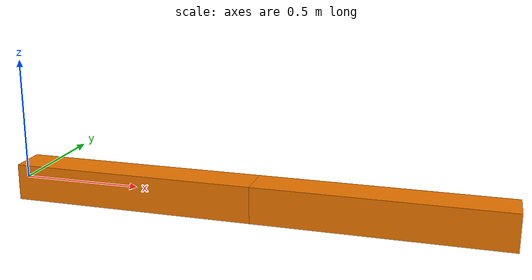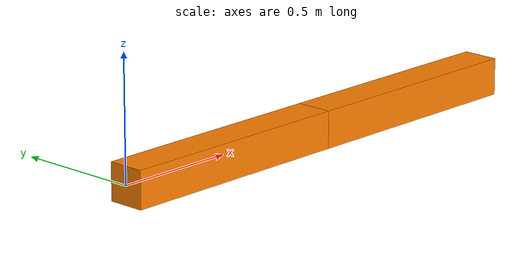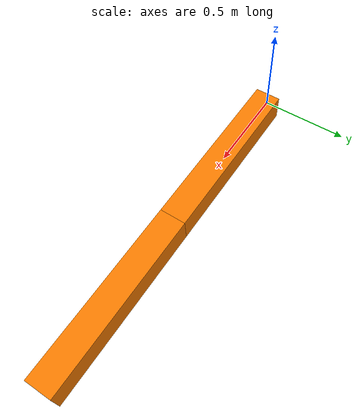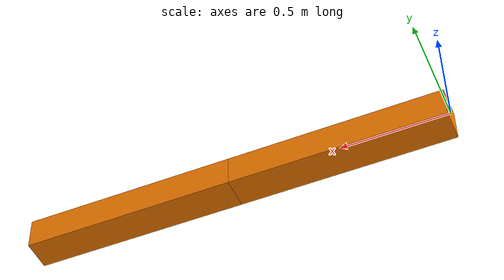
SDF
<?xml version="1.0" ?>
<sdf version='1.6'>
  <model name='2DOFManipulator'>
    <link name="link1">
      <pose frame=''>0 0 0 0 0 0</pose>
      <inertial>
        <pose frame='link1'>0.5 0 0 0 0 0</pose>
        <mass>1.0</mass>
        <inertia>
          <ixx>0.005</ixx>
          <ixy>0.</ixy>
          <ixz>0.0</ixz>
          <iyy>0.006</iyy>
          <izz>0.003</izz>
        </inertia>
      </inertial>
      <collision name='link1_collision'>
        <pose frame=''>0.5 0 0 0 0 0</pose>
        <geometry>
          <box>
            <size>1 0.15 0.15</size>
          </box>
        </geometry>
      </collision>
      <visual name='link1_visual'>
        <pose frame=''>0.5 0 0 0 0 0</pose>
        <geometry>
          <box>
            <size>1 0.15 0.15</size>
          </box>
        </geometry>
        <material>
          <ambient>1.0 0.5019607843137254902 0 1.0</ambient>
        </material>
      </visual>
      <self_collide>0</self_collide>
    </link>

    <link name="link2">
      <pose frame=''>1 0 0 0 0 0</pose>
      <inertial>
        <pose frame='link2'>0.5 0 0 0 0 0</pose>
        <mass>1.0</mass>
        <inertia>
          <ixx>0.005</ixx>
          <ixy>0.</ixy>
          <ixz>0.0</ixz>
          <iyy>0.006</iyy>
          <izz>0.003</izz>
        </inertia>
      </inertial>
      <collision name='link2_collision'>
        <pose frame=''>0.5 0 0 0 0 0</pose>
        <geometry>
          <box>
            <size>1 0.15 0.15</size>
          </box>
        </geometry>
      </collision>
      <visual name='link2_visual'>
        <pose frame=''>0.5 0 0 0 0 0</pose>
        <geometry>
          <box>
            <size>1 0.15 0.15</size>
          </box>
        </geometry>
        <material>
          <ambient>1.0 0.5019607843137254902 0 1.0</ambient>
        </material>
      </visual>
      <self_collide>0</self_collide>
    </link>

    <joint name="joint1" type="revolute">
      <parent>world</parent>
      <child>link1</child>
      <axis>
        <xyz>0 0 1</xyz>
        <limit>
          <lower>-1.5</lower>
          <upper>4.0</upper>
          <velocity>3</velocity>
          <effort>10</effort>
        </limit>
        <dynamics>
          <damping>1.0</damping>
          <friction>0.2</friction>
        </dynamics>
        <use_parent_model_frame>1</use_parent_model_frame>
      </axis>
      <physics>
        <ode>
          <implicit_spring_damper>1</implicit_spring_damper>
          <bounce>0</bounce>
          <limit>
            <erp>0.9</erp>
            <cfm>0</cfm>
          </limit>
        </ode>
      </physics>
    </joint>

    <joint name="joint2" type="revolute">
      <parent>link1</parent>
      <child>link2</child>
      <axis>
        <xyz>0 1 0</xyz>
        <limit>
          <lower>-3.14</lower>
          <upper>4.14</upper>
          <velocity>2</velocity>
          <effort>8</effort>
        </limit>
        <dynamics>
          <damping>1.0</damping>
          <friction>0.2</friction>
        </dynamics>
        <use_parent_model_frame>1</use_parent_model_frame>
      </axis>
      <physics>
        <ode>
          <implicit_spring_damper>1</implicit_spring_damper>
          <bounce>0</bounce>
          <limit>
            <erp>0.9</erp>
            <cfm>0</cfm>
          </limit>
        </ode>
      </physics>
    </joint>
  </model>
</sdf>
